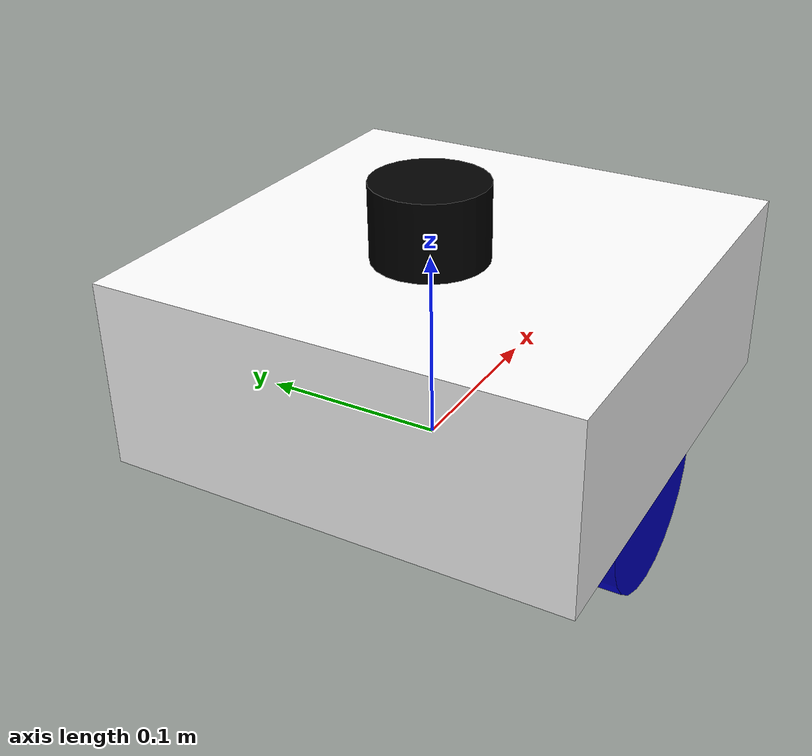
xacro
<?xml version="1.0"?>
<robot xmlns:xacro="http://www.ros.org/wiki/xacro" name="my_robot">

    <xacro:property name="chassis_length" value="0.25"/>
    <xacro:property name="chassis_width" value="0.25"/>
    <xacro:property name="chassis_height" value="0.1"/>
    <xacro:property name="wheel_radius" value="0.05"/>
    <xacro:property name="wheel_thickness" value="0.026"/>
    <xacro:property name="wheel_separation" value="0.22"/> <material name="blue">
        <color rgba="0 0 0.8 1"/>
    </material>
    <material name="black">
        <color rgba="0 0 0 1"/>
    </material>
    <material name="white">
        <color rgba="1 1 1 1"/>
    </material>

    <link name="base_link">
    </link>

    <joint name="chassis_joint" type="fixed">
        <parent link="base_link"/>
        <child link="chassis"/>
        <origin xyz="-0.1 0 0"/> </joint>

    <link name="chassis">
        <visual>
            <origin xyz="${chassis_length/2} 0 ${chassis_height/2}"/>
            <geometry>
                <box size="${chassis_length} ${chassis_width} ${chassis_height}"/>
            </geometry>
            <material name="white"/>
        </visual>
        <collision>
            <origin xyz="${chassis_length/2} 0 ${chassis_height/2}"/>
            <geometry>
                <box size="${chassis_length} ${chassis_width} ${chassis_height}"/>
            </geometry>
        </collision>
    </link>

    <joint name="left_wheel_joint" type="fixed">
        <parent link="base_link"/>
        <child link="left_wheel"/>
        <origin xyz="0 ${wheel_separation/2} 0" rpy="-${pi/2} 0 0"/>
        <axis xyz="0 0 1"/>
    </joint>

    <link name="left_wheel">
        <visual>
            <geometry>
                <cylinder radius="${wheel_radius}" length="${wheel_thickness}"/>
            </geometry>
            <material name="blue"/>
        </visual>
        <collision>
            <geometry>
                <cylinder radius="${wheel_radius}" length="${wheel_thickness}"/>
            </geometry>
        </collision>
    </link>

    <joint name="right_wheel_joint" type="fixed">
        <parent link="base_link"/>
        <child link="right_wheel"/>
        <origin xyz="0 -${wheel_separation/2} 0" rpy="${pi/2} 0 0"/>
        <axis xyz="0 0 -1"/>
    </joint>

    <link name="right_wheel">
        <visual>
            <geometry>
                <cylinder radius="${wheel_radius}" length="${wheel_thickness}"/>
            </geometry>
            <material name="blue"/>
        </visual>
        <collision>
            <geometry>
                <cylinder radius="${wheel_radius}" length="${wheel_thickness}"/>
            </geometry>
        </collision>
    </link>

    <joint name="caster_wheel_joint" type="fixed">
        <parent link="chassis"/>
        <child link="caster_wheel"/>
        <origin xyz="0.24 0 0"/>
    </joint>

    <link name="caster_wheel">
        <visual>
            <geometry>
                <sphere radius="0.05"/>
            </geometry>
            <material name="black"/>
        </visual>
        <collision>
            <geometry>
                <sphere radius="0.05"/>
            </geometry>
        </collision>
    </link>

    <joint name="laser_joint" type="fixed">
        <parent link="chassis"/>
        <child link="laser_frame"/>
        <origin xyz="0.1 0 0.12" rpy="0 0 0"/>
    </joint>

    <link name="laser_frame">
        <visual>
            <geometry>
                <cylinder radius="0.03" length="0.04"/>
            </geometry>
            <material name="black"/>
        </visual>
    </link>

</robot>
